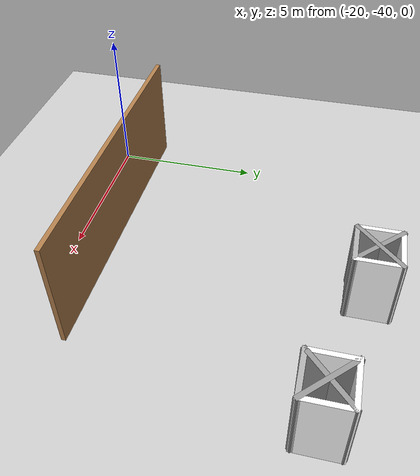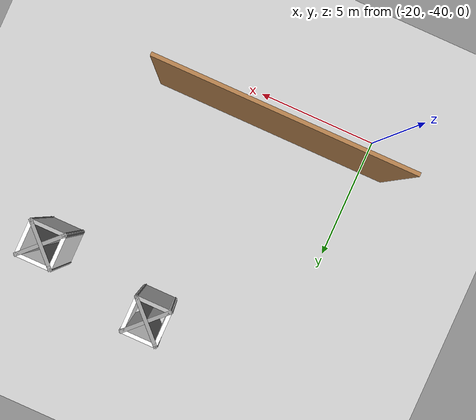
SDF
<sdf version="1.7">
 <world name="default">
  <model name="ground_plane">
   <static>1</static>
   <link name="link">
    <collision name="collision">
     <geometry><plane><normal>0 0 1</normal><size>100 100</size></plane></geometry>
     <surface>
      <contact><collide_bitmask>65535</collide_bitmask></contact>
      <friction><ode><mu>100</mu><mu2>50</mu2></ode></friction>
     </surface>
    </collision>
    <visual name="visual">
     <cast_shadows>0</cast_shadows>
     <geometry><plane><normal>0 0 1</normal><size>100 100</size></plane></geometry>
     <material>
      <script><uri>file://media/materials/scripts/gazebo.material</uri><name>Gazebo/Grey</name></script>
     </material>
    </visual>
   </link>
  </model>
  <model name="Untitled_clone_clone_1_clone_1">
   <link name="Wall_0">
    <pose>-0.8775 -4.2975 0 0 -0 0</pose>
    <inertial>
     <mass>1</mass>
     <inertia><ixx>1</ixx><ixy>0</ixy><ixz>0</ixz><iyy>1</iyy><iyz>0</iyz><izz>1</izz></inertia>
    </inertial>
    <visual name="Wall_0_Visual">
     <pose>0 0 1.9 0 -0 0</pose>
     <geometry><box><size>10 0.15 3.8</size></box></geometry>
     <material>
      <script><uri>file://media/materials/scripts/gazebo.material</uri><name>Gazebo/Wood</name></script>
      <ambient>1 1 1 1</ambient>
      <shader type="pixel"><normal_map>__default__</normal_map></shader>
      <diffuse>1 1 1 1</diffuse>
      <specular>0.2 0.2 0.2 1</specular>
      <emissive>0 0 0 1</emissive>
     </material>
     <meta><layer>0</layer></meta>
    </visual>
    <collision name="Wall_0_Collision">
     <pose>0 0 1.9 0 -0 0</pose>
     <geometry><box><size>10 0.15 3.8</size></box></geometry>
     <surface>
      <friction>
       <ode><mu>1</mu><mu2>1</mu2><fdir1>0 0 0</fdir1><slip1>0</slip1><slip2>0</slip2></ode>
       <torsional>
        <coefficient>1</coefficient>
        <patch_radius>0</patch_radius>
        <surface_radius>0</surface_radius>
        <use_patch_radius>1</use_patch_radius>
        <ode><slip>0</slip></ode>
       </torsional>
      </friction>
      <bounce><restitution_coefficient>0</restitution_coefficient><threshold>1e+06</threshold></bounce>
      <contact>
       <collide_without_contact>0</collide_without_contact>
       <collide_without_contact_bitmask>1</collide_without_contact_bitmask>
       <collide_bitmask>1</collide_bitmask>
       <ode>
        <soft_cfm>0</soft_cfm>
        <soft_erp>0.2</soft_erp>
        <kp>1e+13</kp>
        <kd>1</kd>
        <max_vel>0.01</max_vel>
        <min_depth>0</min_depth>
       </ode>
       <bullet>
        <split_impulse>1</split_impulse>
        <split_impulse_penetration_threshold>-0.01</split_impulse_penetration_threshold>
        <soft_cfm>0</soft_cfm>
        <soft_erp>0.2</soft_erp>
        <kp>1e+13</kp>
        <kd>1</kd>
       </bullet>
      </contact>
     </surface>
    </collision>
   </link>
   <static>1</static>
   <pose>-15.1014 -34.4435 0 0 -0 0</pose>
  </model>
  <model name="Untitled_1_clone_clone">
   <link name="Wall_10">
    <pose>4.92197 -3.43197 0 0 -0 1.5708</pose>
    <inertial>
     <mass>1</mass>
     <inertia><ixx>1</ixx><ixy>0</ixy><ixz>0</ixz><iyy>1</iyy><iyz>0</iyz><izz>1</izz></inertia>
    </inertial>
    <visual name="Wall_10_Visual">
     <pose>0 0 1.25 0 -0 0</pose>
     <geometry><box><size>1.5 0.15 2.5</size></box></geometry>
     <material>
      <script><uri>file://media/materials/scripts/gazebo.material</uri><name>Gazebo/CoM</name></script>
      <ambient>1 1 1 1</ambient>
      <shader type="pixel"><normal_map>__default__</normal_map></shader>
      <diffuse>1 1 1 1</diffuse>
      <specular>0 0 0 1</specular>
      <emissive>0 0 0 1</emissive>
     </material>
     <meta><layer>0</layer></meta>
    </visual>
    <collision name="Wall_10_Collision">
     <pose>0 0 1.25 0 -0 0</pose>
     <geometry><box><size>1.5 0.15 2.5</size></box></geometry>
     <surface>
      <friction>
       <ode><mu>1</mu><mu2>1</mu2><fdir1>0 0 0</fdir1><slip1>0</slip1><slip2>0</slip2></ode>
       <torsional>
        <coefficient>1</coefficient>
        <patch_radius>0</patch_radius>
        <surface_radius>0</surface_radius>
        <use_patch_radius>1</use_patch_radius>
        <ode><slip>0</slip></ode>
       </torsional>
      </friction>
      <bounce><restitution_coefficient>0</restitution_coefficient><threshold>1e+06</threshold></bounce>
      <contact>
       <collide_without_contact>0</collide_without_contact>
       <collide_without_contact_bitmask>1</collide_without_contact_bitmask>
       <collide_bitmask>1</collide_bitmask>
       <ode>
        <soft_cfm>0</soft_cfm>
        <soft_erp>0.2</soft_erp>
        <kp>1e+13</kp>
        <kd>1</kd>
        <max_vel>0.01</max_vel>
        <min_depth>0</min_depth>
       </ode>
       <bullet>
        <split_impulse>1</split_impulse>
        <split_impulse_penetration_threshold>-0.01</split_impulse_penetration_threshold>
        <soft_cfm>0</soft_cfm>
        <soft_erp>0.2</soft_erp>
        <kp>1e+13</kp>
        <kd>1</kd>
       </bullet>
      </contact>
     </surface>
    </collision>
   </link>
   <link name="Wall_11">
    <pose>5.59697 -3.43197 0 0 0 -0.785398</pose>
    <visual name="Wall_11_Visual">
     <pose>0 0 1.25 0 -0 0</pose>
     <geometry><box><size>2.05919 0.15 2.5</size></box></geometry>
     <material>
      <script><uri>file://media/materials/scripts/gazebo.material</uri><name>Gazebo/Grey</name></script>
      <ambient>1 1 1 1</ambient>
      <shader type="pixel"/>
     </material>
     <meta><layer>0</layer></meta>
    </visual>
    <collision name="Wall_11_Collision">
     <pose>0 0 1.25 0 -0 0</pose>
     <geometry><box><size>2.05919 0.15 2.5</size></box></geometry>
     <surface>
      <friction>
       <ode><mu>1</mu><mu2>1</mu2><fdir1>0 0 0</fdir1><slip1>0</slip1><slip2>0</slip2></ode>
       <torsional>
        <coefficient>1</coefficient>
        <patch_radius>0</patch_radius>
        <surface_radius>0</surface_radius>
        <use_patch_radius>1</use_patch_radius>
        <ode><slip>0</slip></ode>
       </torsional>
      </friction>
      <bounce><restitution_coefficient>0</restitution_coefficient><threshold>1e+06</threshold></bounce>
      <contact>
       <collide_without_contact>0</collide_without_contact>
       <collide_without_contact_bitmask>1</collide_without_contact_bitmask>
       <collide_bitmask>1</collide_bitmask>
       <ode>
        <soft_cfm>0</soft_cfm>
        <soft_erp>0.2</soft_erp>
        <kp>1e+13</kp>
        <kd>1</kd>
        <max_vel>0.01</max_vel>
        <min_depth>0</min_depth>
       </ode>
       <bullet>
        <split_impulse>1</split_impulse>
        <split_impulse_penetration_threshold>-0.01</split_impulse_penetration_threshold>
        <soft_cfm>0</soft_cfm>
        <soft_erp>0.2</soft_erp>
        <kp>1e+13</kp>
        <kd>1</kd>
       </bullet>
      </contact>
     </surface>
    </collision>
   </link>
   <link name="Wall_13">
    <pose>5.59697 -3.43197 0 0 -0 0.785398</pose>
    <visual name="Wall_13_Visual">
     <pose>0 0 1.25 0 -0 0</pose>
     <geometry><box><size>2.05919 0.15 2.5</size></box></geometry>
     <material>
      <script><uri>file://media/materials/scripts/gazebo.material</uri><name>Gazebo/Grey</name></script>
      <ambient>1 1 1 1</ambient>
      <shader type="pixel"/>
     </material>
     <meta><layer>0</layer></meta>
    </visual>
    <collision name="Wall_13_Collision">
     <pose>0 0 1.25 0 -0 0</pose>
     <geometry><box><size>2.05919 0.15 2.5</size></box></geometry>
     <surface>
      <friction>
       <ode><mu>1</mu><mu2>1</mu2><fdir1>0 0 0</fdir1><slip1>0</slip1><slip2>0</slip2></ode>
       <torsional>
        <coefficient>1</coefficient>
        <patch_radius>0</patch_radius>
        <surface_radius>0</surface_radius>
        <use_patch_radius>1</use_patch_radius>
        <ode><slip>0</slip></ode>
       </torsional>
      </friction>
      <bounce><restitution_coefficient>0</restitution_coefficient><threshold>1e+06</threshold></bounce>
      <contact>
       <collide_without_contact>0</collide_without_contact>
       <collide_without_contact_bitmask>1</collide_without_contact_bitmask>
       <collide_bitmask>1</collide_bitmask>
       <ode>
        <soft_cfm>0</soft_cfm>
        <soft_erp>0.2</soft_erp>
        <kp>1e+13</kp>
        <kd>1</kd>
        <max_vel>0.01</max_vel>
        <min_depth>0</min_depth>
       </ode>
       <bullet>
        <split_impulse>1</split_impulse>
        <split_impulse_penetration_threshold>-0.01</split_impulse_penetration_threshold>
        <soft_cfm>0</soft_cfm>
        <soft_erp>0.2</soft_erp>
        <kp>1e+13</kp>
        <kd>1</kd>
       </bullet>
      </contact>
     </surface>
    </collision>
   </link>
   <link name="Wall_7">
    <pose>5.59697 -2.75697 0 0 -0 0</pose>
    <inertial>
     <mass>1</mass>
     <inertia><ixx>1</ixx><ixy>0</ixy><ixz>0</ixz><iyy>1</iyy><iyz>0</iyz><izz>1</izz></inertia>
    </inertial>
    <visual name="Wall_7_Visual">
     <pose>0 0 1.25 0 -0 0</pose>
     <geometry><box><size>1.5 0.15 2.5</size></box></geometry>
     <material>
      <script><uri>file://media/materials/scripts/gazebo.material</uri><name>Gazebo/CoM</name></script>
      <ambient>1 1 1 1</ambient>
      <shader type="pixel"><normal_map>__default__</normal_map></shader>
      <diffuse>1 1 1 1</diffuse>
      <specular>0 0 0 1</specular>
      <emissive>0 0 0 1</emissive>
     </material>
     <meta><layer>0</layer></meta>
    </visual>
    <collision name="Wall_7_Collision">
     <pose>0 0 1.25 0 -0 0</pose>
     <geometry><box><size>1.5 0.15 2.5</size></box></geometry>
     <surface>
      <friction>
       <ode><mu>1</mu><mu2>1</mu2><fdir1>0 0 0</fdir1><slip1>0</slip1><slip2>0</slip2></ode>
       <torsional>
        <coefficient>1</coefficient>
        <patch_radius>0</patch_radius>
        <surface_radius>0</surface_radius>
        <use_patch_radius>1</use_patch_radius>
        <ode><slip>0</slip></ode>
       </torsional>
      </friction>
      <bounce><restitution_coefficient>0</restitution_coefficient><threshold>1e+06</threshold></bounce>
      <contact>
       <collide_without_contact>0</collide_without_contact>
       <collide_without_contact_bitmask>1</collide_without_contact_bitmask>
       <collide_bitmask>1</collide_bitmask>
       <ode>
        <soft_cfm>0</soft_cfm>
        <soft_erp>0.2</soft_erp>
        <kp>1e+13</kp>
        <kd>1</kd>
        <max_vel>0.01</max_vel>
        <min_depth>0</min_depth>
       </ode>
       <bullet>
        <split_impulse>1</split_impulse>
        <split_impulse_penetration_threshold>-0.01</split_impulse_penetration_threshold>
        <soft_cfm>0</soft_cfm>
        <soft_erp>0.2</soft_erp>
        <kp>1e+13</kp>
        <kd>1</kd>
       </bullet>
      </contact>
     </surface>
    </collision>
   </link>
   <link name="Wall_8">
    <pose>6.27197 -3.43197 0 0 0 -1.5708</pose>
    <inertial>
     <mass>1</mass>
     <inertia><ixx>1</ixx><ixy>0</ixy><ixz>0</ixz><iyy>1</iyy><iyz>0</iyz><izz>1</izz></inertia>
    </inertial>
    <visual name="Wall_8_Visual">
     <pose>0 0 1.25 0 -0 0</pose>
     <geometry><box><size>1.5 0.15 2.5</size></box></geometry>
     <material>
      <script><uri>file://media/materials/scripts/gazebo.material</uri><name>Gazebo/CoM</name></script>
      <ambient>1 1 1 1</ambient>
      <shader type="pixel"><normal_map>__default__</normal_map></shader>
      <diffuse>1 1 1 1</diffuse>
      <specular>0 0 0 1</specular>
      <emissive>0 0 0 1</emissive>
     </material>
     <meta><layer>0</layer></meta>
    </visual>
    <collision name="Wall_8_Collision">
     <pose>0 0 1.25 0 -0 0</pose>
     <geometry><box><size>1.5 0.15 2.5</size></box></geometry>
     <surface>
      <friction>
       <ode><mu>1</mu><mu2>1</mu2><fdir1>0 0 0</fdir1><slip1>0</slip1><slip2>0</slip2></ode>
       <torsional>
        <coefficient>1</coefficient>
        <patch_radius>0</patch_radius>
        <surface_radius>0</surface_radius>
        <use_patch_radius>1</use_patch_radius>
        <ode><slip>0</slip></ode>
       </torsional>
      </friction>
      <bounce><restitution_coefficient>0</restitution_coefficient><threshold>1e+06</threshold></bounce>
      <contact>
       <collide_without_contact>0</collide_without_contact>
       <collide_without_contact_bitmask>1</collide_without_contact_bitmask>
       <collide_bitmask>1</collide_bitmask>
       <ode>
        <soft_cfm>0</soft_cfm>
        <soft_erp>0.2</soft_erp>
        <kp>1e+13</kp>
        <kd>1</kd>
        <max_vel>0.01</max_vel>
        <min_depth>0</min_depth>
       </ode>
       <bullet>
        <split_impulse>1</split_impulse>
        <split_impulse_penetration_threshold>-0.01</split_impulse_penetration_threshold>
        <soft_cfm>0</soft_cfm>
        <soft_erp>0.2</soft_erp>
        <kp>1e+13</kp>
        <kd>1</kd>
       </bullet>
      </contact>
     </surface>
    </collision>
   </link>
   <link name="Wall_9">
    <pose>5.59697 -4.10697 0 0 -0 3.14159</pose>
    <inertial>
     <mass>1</mass>
     <inertia><ixx>1</ixx><ixy>0</ixy><ixz>0</ixz><iyy>1</iyy><iyz>0</iyz><izz>1</izz></inertia>
    </inertial>
    <visual name="Wall_9_Visual">
     <pose>0 0 1.25 0 -0 0</pose>
     <geometry><box><size>1.5 0.15 2.5</size></box></geometry>
     <material>
      <script><uri>file://media/materials/scripts/gazebo.material</uri><name>Gazebo/CoM</name></script>
      <ambient>1 1 1 1</ambient>
      <shader type="pixel"><normal_map>__default__</normal_map></shader>
      <diffuse>0.7 0.7 0.7 1</diffuse>
      <specular>0.01 0.01 0.01 1</specular>
      <emissive>0 0 0 1</emissive>
     </material>
     <meta><layer>0</layer></meta>
    </visual>
    <collision name="Wall_9_Collision">
     <pose>0 0 1.25 0 -0 0</pose>
     <geometry><box><size>1.5 0.15 2.5</size></box></geometry>
     <surface>
      <friction>
       <ode><mu>1</mu><mu2>1</mu2><fdir1>0 0 0</fdir1><slip1>0</slip1><slip2>0</slip2></ode>
       <torsional>
        <coefficient>1</coefficient>
        <patch_radius>0</patch_radius>
        <surface_radius>0</surface_radius>
        <use_patch_radius>1</use_patch_radius>
        <ode><slip>0</slip></ode>
       </torsional>
      </friction>
      <bounce><restitution_coefficient>0</restitution_coefficient><threshold>1e+06</threshold></bounce>
      <contact>
       <collide_without_contact>0</collide_without_contact>
       <collide_without_contact_bitmask>1</collide_without_contact_bitmask>
       <collide_bitmask>1</collide_bitmask>
       <ode>
        <soft_cfm>0</soft_cfm>
        <soft_erp>0.2</soft_erp>
        <kp>1e+13</kp>
        <kd>1</kd>
        <max_vel>0.01</max_vel>
        <min_depth>0</min_depth>
       </ode>
       <bullet>
        <split_impulse>1</split_impulse>
        <split_impulse_penetration_threshold>-0.01</split_impulse_penetration_threshold>
        <soft_cfm>0</soft_cfm>
        <soft_erp>0.2</soft_erp>
        <kp>1e+13</kp>
        <kd>1</kd>
       </bullet>
      </contact>
     </surface>
    </collision>
   </link>
   <static>1</static>
   <pose>-15.4503 -27.6011 0 0 -0 0</pose>
  </model>
  <model name="Untitled_1_clone_3_clone">
   <link name="Wall_10">
    <pose>4.92197 -3.43197 0 0 -0 1.5708</pose>
    <inertial>
     <mass>1</mass>
     <inertia><ixx>1</ixx><ixy>0</ixy><ixz>0</ixz><iyy>1</iyy><iyz>0</iyz><izz>1</izz></inertia>
    </inertial>
    <visual name="Wall_10_Visual">
     <pose>0 0 1.25 0 -0 0</pose>
     <geometry><box><size>1.5 0.15 2.5</size></box></geometry>
     <material>
      <script><uri>file://media/materials/scripts/gazebo.material</uri><name>Gazebo/CoM</name></script>
      <ambient>1 1 1 1</ambient>
      <shader type="pixel"><normal_map>__default__</normal_map></shader>
      <diffuse>1 1 1 1</diffuse>
      <specular>0 0 0 1</specular>
      <emissive>0 0 0 1</emissive>
     </material>
     <meta><layer>0</layer></meta>
    </visual>
    <collision name="Wall_10_Collision">
     <pose>0 0 1.25 0 -0 0</pose>
     <geometry><box><size>1.5 0.15 2.5</size></box></geometry>
     <surface>
      <friction>
       <ode><mu>1</mu><mu2>1</mu2><fdir1>0 0 0</fdir1><slip1>0</slip1><slip2>0</slip2></ode>
       <torsional>
        <coefficient>1</coefficient>
        <patch_radius>0</patch_radius>
        <surface_radius>0</surface_radius>
        <use_patch_radius>1</use_patch_radius>
        <ode><slip>0</slip></ode>
       </torsional>
      </friction>
      <bounce><restitution_coefficient>0</restitution_coefficient><threshold>1e+06</threshold></bounce>
      <contact>
       <collide_without_contact>0</collide_without_contact>
       <collide_without_contact_bitmask>1</collide_without_contact_bitmask>
       <collide_bitmask>1</collide_bitmask>
       <ode>
        <soft_cfm>0</soft_cfm>
        <soft_erp>0.2</soft_erp>
        <kp>1e+13</kp>
        <kd>1</kd>
        <max_vel>0.01</max_vel>
        <min_depth>0</min_depth>
       </ode>
       <bullet>
        <split_impulse>1</split_impulse>
        <split_impulse_penetration_threshold>-0.01</split_impulse_penetration_threshold>
        <soft_cfm>0</soft_cfm>
        <soft_erp>0.2</soft_erp>
        <kp>1e+13</kp>
        <kd>1</kd>
       </bullet>
      </contact>
     </surface>
    </collision>
   </link>
   <link name="Wall_11">
    <pose>5.59697 -3.43197 0 0 0 -0.785398</pose>
    <visual name="Wall_11_Visual">
     <pose>0 0 1.25 0 -0 0</pose>
     <geometry><box><size>2.05919 0.15 2.5</size></box></geometry>
     <material>
      <script><uri>file://media/materials/scripts/gazebo.material</uri><name>Gazebo/Grey</name></script>
      <ambient>1 1 1 1</ambient>
      <shader type="pixel"/>
     </material>
     <meta><layer>0</layer></meta>
    </visual>
    <collision name="Wall_11_Collision">
     <pose>0 0 1.25 0 -0 0</pose>
     <geometry><box><size>2.05919 0.15 2.5</size></box></geometry>
     <surface>
      <friction>
       <ode><mu>1</mu><mu2>1</mu2><fdir1>0 0 0</fdir1><slip1>0</slip1><slip2>0</slip2></ode>
       <torsional>
        <coefficient>1</coefficient>
        <patch_radius>0</patch_radius>
        <surface_radius>0</surface_radius>
        <use_patch_radius>1</use_patch_radius>
        <ode><slip>0</slip></ode>
       </torsional>
      </friction>
      <bounce><restitution_coefficient>0</restitution_coefficient><threshold>1e+06</threshold></bounce>
      <contact>
       <collide_without_contact>0</collide_without_contact>
       <collide_without_contact_bitmask>1</collide_without_contact_bitmask>
       <collide_bitmask>1</collide_bitmask>
       <ode>
        <soft_cfm>0</soft_cfm>
        <soft_erp>0.2</soft_erp>
        <kp>1e+13</kp>
        <kd>1</kd>
        <max_vel>0.01</max_vel>
        <min_depth>0</min_depth>
       </ode>
       <bullet>
        <split_impulse>1</split_impulse>
        <split_impulse_penetration_threshold>-0.01</split_impulse_penetration_threshold>
        <soft_cfm>0</soft_cfm>
        <soft_erp>0.2</soft_erp>
        <kp>1e+13</kp>
        <kd>1</kd>
       </bullet>
      </contact>
     </surface>
    </collision>
   </link>
   <link name="Wall_13">
    <pose>5.59697 -3.43197 0 0 -0 0.785398</pose>
    <visual name="Wall_13_Visual">
     <pose>0 0 1.25 0 -0 0</pose>
     <geometry><box><size>2.05919 0.15 2.5</size></box></geometry>
     <material>
      <script><uri>file://media/materials/scripts/gazebo.material</uri><name>Gazebo/Grey</name></script>
      <ambient>1 1 1 1</ambient>
      <shader type="pixel"/>
     </material>
     <meta><layer>0</layer></meta>
    </visual>
    <collision name="Wall_13_Collision">
     <pose>0 0 1.25 0 -0 0</pose>
     <geometry><box><size>2.05919 0.15 2.5</size></box></geometry>
     <surface>
      <friction>
       <ode><mu>1</mu><mu2>1</mu2><fdir1>0 0 0</fdir1><slip1>0</slip1><slip2>0</slip2></ode>
       <torsional>
        <coefficient>1</coefficient>
        <patch_radius>0</patch_radius>
        <surface_radius>0</surface_radius>
        <use_patch_radius>1</use_patch_radius>
        <ode><slip>0</slip></ode>
       </torsional>
      </friction>
      <bounce><restitution_coefficient>0</restitution_coefficient><threshold>1e+06</threshold></bounce>
      <contact>
       <collide_without_contact>0</collide_without_contact>
       <collide_without_contact_bitmask>1</collide_without_contact_bitmask>
       <collide_bitmask>1</collide_bitmask>
       <ode>
        <soft_cfm>0</soft_cfm>
        <soft_erp>0.2</soft_erp>
        <kp>1e+13</kp>
        <kd>1</kd>
        <max_vel>0.01</max_vel>
        <min_depth>0</min_depth>
       </ode>
       <bullet>
        <split_impulse>1</split_impulse>
        <split_impulse_penetration_threshold>-0.01</split_impulse_penetration_threshold>
        <soft_cfm>0</soft_cfm>
        <soft_erp>0.2</soft_erp>
        <kp>1e+13</kp>
        <kd>1</kd>
       </bullet>
      </contact>
     </surface>
    </collision>
   </link>
   <link name="Wall_7">
    <pose>5.59697 -2.75697 0 0 -0 0</pose>
    <inertial>
     <mass>1</mass>
     <inertia><ixx>1</ixx><ixy>0</ixy><ixz>0</ixz><iyy>1</iyy><iyz>0</iyz><izz>1</izz></inertia>
    </inertial>
    <visual name="Wall_7_Visual">
     <pose>0 0 1.25 0 -0 0</pose>
     <geometry><box><size>1.5 0.15 2.5</size></box></geometry>
     <material>
      <script><uri>file://media/materials/scripts/gazebo.material</uri><name>Gazebo/CoM</name></script>
      <ambient>1 1 1 1</ambient>
      <shader type="pixel"><normal_map>__default__</normal_map></shader>
      <diffuse>1 1 1 1</diffuse>
      <specular>0 0 0 1</specular>
      <emissive>0 0 0 1</emissive>
     </material>
     <meta><layer>0</layer></meta>
    </visual>
    <collision name="Wall_7_Collision">
     <pose>0 0 1.25 0 -0 0</pose>
     <geometry><box><size>1.5 0.15 2.5</size></box></geometry>
     <surface>
      <friction>
       <ode><mu>1</mu><mu2>1</mu2><fdir1>0 0 0</fdir1><slip1>0</slip1><slip2>0</slip2></ode>
       <torsional>
        <coefficient>1</coefficient>
        <patch_radius>0</patch_radius>
        <surface_radius>0</surface_radius>
        <use_patch_radius>1</use_patch_radius>
        <ode><slip>0</slip></ode>
       </torsional>
      </friction>
      <bounce><restitution_coefficient>0</restitution_coefficient><threshold>1e+06</threshold></bounce>
      <contact>
       <collide_without_contact>0</collide_without_contact>
       <collide_without_contact_bitmask>1</collide_without_contact_bitmask>
       <collide_bitmask>1</collide_bitmask>
       <ode>
        <soft_cfm>0</soft_cfm>
        <soft_erp>0.2</soft_erp>
        <kp>1e+13</kp>
        <kd>1</kd>
        <max_vel>0.01</max_vel>
        <min_depth>0</min_depth>
       </ode>
       <bullet>
        <split_impulse>1</split_impulse>
        <split_impulse_penetration_threshold>-0.01</split_impulse_penetration_threshold>
        <soft_cfm>0</soft_cfm>
        <soft_erp>0.2</soft_erp>
        <kp>1e+13</kp>
        <kd>1</kd>
       </bullet>
      </contact>
     </surface>
    </collision>
   </link>
   <link name="Wall_8">
    <pose>6.27197 -3.43197 0 0 0 -1.5708</pose>
    <inertial>
     <mass>1</mass>
     <inertia><ixx>1</ixx><ixy>0</ixy><ixz>0</ixz><iyy>1</iyy><iyz>0</iyz><izz>1</izz></inertia>
    </inertial>
    <visual name="Wall_8_Visual">
     <pose>0 0 1.25 0 -0 0</pose>
     <geometry><box><size>1.5 0.15 2.5</size></box></geometry>
     <material>
      <script><uri>file://media/materials/scripts/gazebo.material</uri><name>Gazebo/CoM</name></script>
      <ambient>1 1 1 1</ambient>
      <shader type="pixel"><normal_map>__default__</normal_map></shader>
      <diffuse>1 1 1 1</diffuse>
      <specular>0 0 0 1</specular>
      <emissive>0 0 0 1</emissive>
     </material>
     <meta><layer>0</layer></meta>
    </visual>
    <collision name="Wall_8_Collision">
     <pose>0 0 1.25 0 -0 0</pose>
     <geometry><box><size>1.5 0.15 2.5</size></box></geometry>
     <surface>
      <friction>
       <ode><mu>1</mu><mu2>1</mu2><fdir1>0 0 0</fdir1><slip1>0</slip1><slip2>0</slip2></ode>
       <torsional>
        <coefficient>1</coefficient>
        <patch_radius>0</patch_radius>
        <surface_radius>0</surface_radius>
        <use_patch_radius>1</use_patch_radius>
        <ode><slip>0</slip></ode>
       </torsional>
      </friction>
      <bounce><restitution_coefficient>0</restitution_coefficient><threshold>1e+06</threshold></bounce>
      <contact>
       <collide_without_contact>0</collide_without_contact>
       <collide_without_contact_bitmask>1</collide_without_contact_bitmask>
       <collide_bitmask>1</collide_bitmask>
       <ode>
        <soft_cfm>0</soft_cfm>
        <soft_erp>0.2</soft_erp>
        <kp>1e+13</kp>
        <kd>1</kd>
        <max_vel>0.01</max_vel>
        <min_depth>0</min_depth>
       </ode>
       <bullet>
        <split_impulse>1</split_impulse>
        <split_impulse_penetration_threshold>-0.01</split_impulse_penetration_threshold>
        <soft_cfm>0</soft_cfm>
        <soft_erp>0.2</soft_erp>
        <kp>1e+13</kp>
        <kd>1</kd>
       </bullet>
      </contact>
     </surface>
    </collision>
   </link>
   <link name="Wall_9">
    <pose>5.59697 -4.10697 0 0 -0 3.14159</pose>
    <inertial>
     <mass>1</mass>
     <inertia><ixx>1</ixx><ixy>0</ixy><ixz>0</ixz><iyy>1</iyy><iyz>0</iyz><izz>1</izz></inertia>
    </inertial>
    <visual name="Wall_9_Visual">
     <pose>0 0 1.25 0 -0 0</pose>
     <geometry><box><size>1.5 0.15 2.5</size></box></geometry>
     <material>
      <script><uri>file://media/materials/scripts/gazebo.material</uri><name>Gazebo/CoM</name></script>
      <ambient>1 1 1 1</ambient>
      <shader type="pixel"><normal_map>__default__</normal_map></shader>
      <diffuse>0.7 0.7 0.7 1</diffuse>
      <specular>0.01 0.01 0.01 1</specular>
      <emissive>0 0 0 1</emissive>
     </material>
     <meta><layer>0</layer></meta>
    </visual>
    <collision name="Wall_9_Collision">
     <pose>0 0 1.25 0 -0 0</pose>
     <geometry><box><size>1.5 0.15 2.5</size></box></geometry>
     <surface>
      <friction>
       <ode><mu>1</mu><mu2>1</mu2><fdir1>0 0 0</fdir1><slip1>0</slip1><slip2>0</slip2></ode>
       <torsional>
        <coefficient>1</coefficient>
        <patch_radius>0</patch_radius>
        <surface_radius>0</surface_radius>
        <use_patch_radius>1</use_patch_radius>
        <ode><slip>0</slip></ode>
       </torsional>
      </friction>
      <bounce><restitution_coefficient>0</restitution_coefficient><threshold>1e+06</threshold></bounce>
      <contact>
       <collide_without_contact>0</collide_without_contact>
       <collide_without_contact_bitmask>1</collide_without_contact_bitmask>
       <collide_bitmask>1</collide_bitmask>
       <ode>
        <soft_cfm>0</soft_cfm>
        <soft_erp>0.2</soft_erp>
        <kp>1e+13</kp>
        <kd>1</kd>
        <max_vel>0.01</max_vel>
        <min_depth>0</min_depth>
       </ode>
       <bullet>
        <split_impulse>1</split_impulse>
        <split_impulse_penetration_threshold>-0.01</split_impulse_penetration_threshold>
        <soft_cfm>0</soft_cfm>
        <soft_erp>0.2</soft_erp>
        <kp>1e+13</kp>
        <kd>1</kd>
       </bullet>
      </contact>
     </surface>
    </collision>
   </link>
   <static>1</static>
   <pose>-20.1119 -26.6199 0 0 -0 0</pose>
  </model>
 </world>
</sdf>
